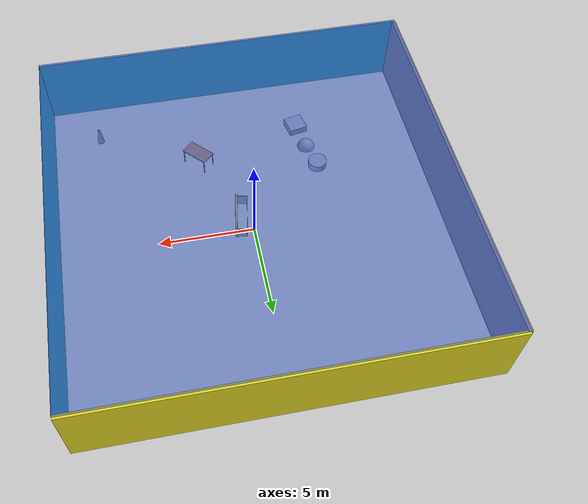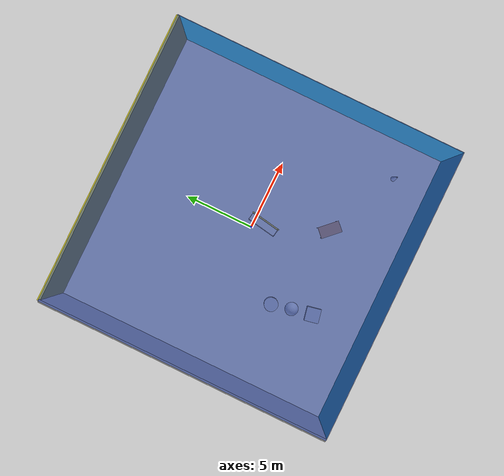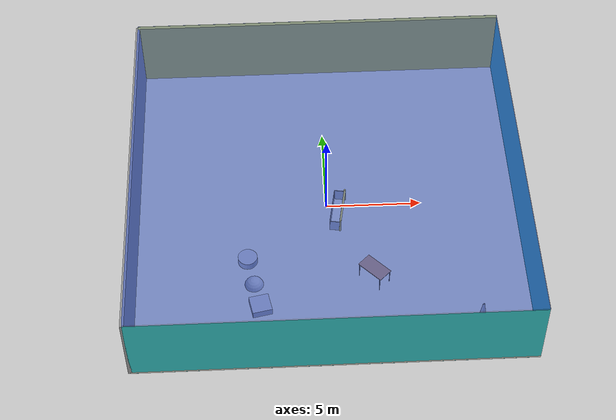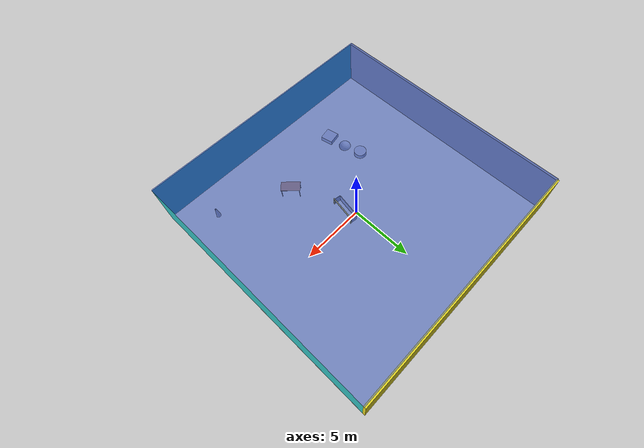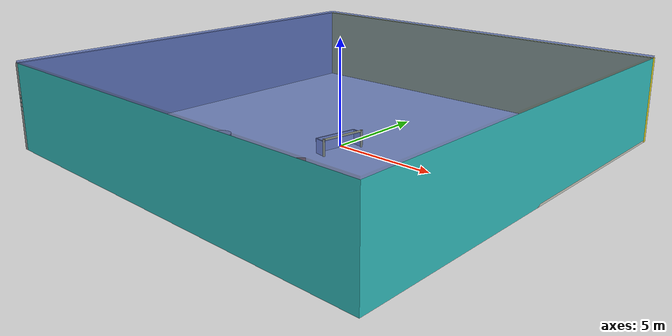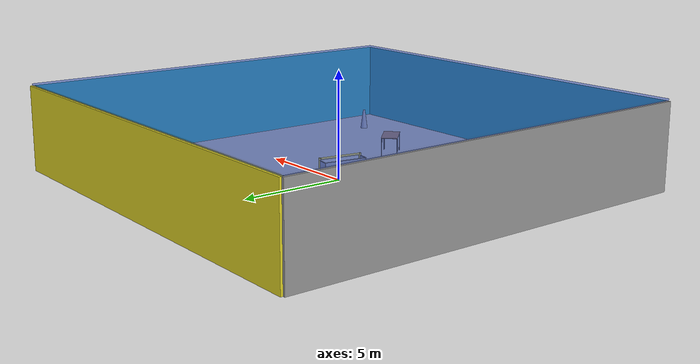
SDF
<sdf version="1.4">
 <world name="default">
  <physics type="ode">
   <max_step_size>0.001</max_step_size>
   <real_time_factor>1</real_time_factor>
   <real_time_update_rate>1000</real_time_update_rate>
   <gravity>0 0 -9.8</gravity>
  </physics>
  <scene><ambient>0.4 0.4 0.4 1</ambient><background>0.7 0.7 0.7 1</background><shadows>1</shadows></scene>
  <model name="Surrounding">
   <static>1</static>
   <link name="Ceiling">
    <collision name="Ceiling_Collision"><geometry><box><size>20 20 0.1</size></box></geometry></collision>
    <visual name="Ceiling_Visual">
     <geometry><box><size>20 20 0.1</size></box></geometry>
     <material>
      <script><uri>file://media/materials/scripts/gazebo.material</uri><name>Gazebo/BlueTransparent</name></script>
     </material>
    </visual>
    <pose>0 0 4.05 0 0 0</pose>
   </link>
   <link name="Wall_South">
    <collision name="Wall_South_Collision">
     <geometry><box><size>20 0 4</size></box></geometry>
     <pose>0 0 2 0 -0 0</pose>
    </collision>
    <visual name="Wall_South_Visual">
     <pose>0 0 2 0 -0 0</pose>
     <geometry><box><size>20 0 4</size></box></geometry>
     <material>
      <script>
       <uri>file://media/materials/scripts/gazebo.material</uri>
       <name>Gazebo/TurquoiseGlowOutline</name>
      </script>
     </material>
    </visual>
    <velocity_decay><linear>0</linear><angular>0</angular></velocity_decay>
    <pose>0 -10 0 0 -0 0</pose>
   </link>
   <link name="Wall_East">
    <collision name="Wall_21_Collision">
     <geometry><box><size>20 0 4</size></box></geometry>
     <pose>0 0 2 0 -0 0</pose>
    </collision>
    <visual name="Wall_21_Visual">
     <pose>0 0 2 0 -0 0</pose>
     <geometry><box><size>20 0 4</size></box></geometry>
     <material>
      <script>
       <uri>file://media/materials/scripts/gazebo.material</uri>
       <name>Gazebo/TurquoiseGlowOutline</name>
      </script>
     </material>
    </visual>
    <velocity_decay><linear>0</linear><angular>0</angular></velocity_decay>
    <pose>10 0 0 0 -0 1.5708</pose>
   </link>
   <link name="Wall_North">
    <collision name="Wall_22_Collision">
     <geometry><box><size>20 0.2 4</size></box></geometry>
     <pose>0 0 2 0 -0 0</pose>
    </collision>
    <visual name="Wall_22_Visual">
     <pose>0 0 2 0 -0 0</pose>
     <geometry><box><size>20 0.2 4</size></box></geometry>
     <material>
      <script><uri>file://media/materials/scripts/gazebo.material</uri><name>Gazebo/YellowGlow</name></script>
     </material>
    </visual>
    <velocity_decay><linear>0</linear><angular>0</angular></velocity_decay>
    <pose>0 10 0 0 -0 0</pose>
   </link>
   <link name="Wall_West">
    <collision name="Wall_23_Collision">
     <geometry><box><size>20 0.2 4</size></box></geometry>
     <pose>0 0 2 0 -0 0</pose>
    </collision>
    <visual name="Wall_23_Visual">
     <pose>0 0 2 0 -0 0</pose>
     <geometry><box><size>20 0.2 4</size></box></geometry>
     <material>
      <script><uri>file://media/materials/scripts/gazebo.material</uri><name>Gazebo/GreyGradientSky</name></script>
     </material>
    </visual>
    <velocity_decay><linear>0</linear><angular>0</angular></velocity_decay>
    <pose>-10 0 0 0 0 -1.5708</pose>
   </link>
   <link name="Ground_link">
    <collision name="collision">
     <pose>0 0 .05 0 -0 0</pose>
     <geometry><box><size>20 20 0.1</size></box></geometry>
    </collision>
    <visual name="visual">
     <pose>0 0 .05 0 -0 0</pose>
     <geometry><box><size>20 20 0.1</size></box></geometry>
     <material>
      <script><uri>file://media/materials/scripts/gazebo.material</uri><name>Gazebo/PaintedWall</name></script>
     </material>
    </visual>
   </link>
   <static>1</static>
  </model>
  <spherical_coordinates>
   <surface_model>EARTH_WGS84</surface_model>
   <latitude_deg>0</latitude_deg>
   <longitude_deg>0</longitude_deg>
   <elevation>0</elevation>
   <heading_deg>0</heading_deg>
  </spherical_coordinates>
  <light name="lightball_0" type="diffuse">
   <diffuse>0.8 0.8 0.8 1</diffuse>
   <specular>0.2 0.2 0.2 1</specular>
   <attenuation>
    <range>100</range>
    <constant>0.7</constant>
    <linear>0.01</linear>
    <quadratic>0.001</quadratic>
   </attenuation>
   <direction>-0.5 0.1 -0.9</direction>
   <pose>-5.55246322488 -4.40336359242 2.96159708956 0 0 0</pose>
  </light>
  <light name="lightball_1" type="diffuse">
   <diffuse>0.8 0.8 0.8 1</diffuse>
   <specular>0.2 0.2 0.2 1</specular>
   <attenuation>
    <range>100</range>
    <constant>0.7</constant>
    <linear>0.01</linear>
    <quadratic>0.001</quadratic>
   </attenuation>
   <direction>-0.5 0.1 -0.9</direction>
   <pose>-3.12673679003 0.881972428523 3.58365217306 0 0 0</pose>
  </light>
  <light name="lightball_2" type="diffuse">
   <diffuse>0.8 0.8 0.8 1</diffuse>
   <specular>0.2 0.2 0.2 1</specular>
   <attenuation>
    <range>100</range>
    <constant>0.7</constant>
    <linear>0.01</linear>
    <quadratic>0.001</quadratic>
   </attenuation>
   <direction>-0.5 0.1 -0.9</direction>
   <pose>0.797162894205 -1.13517086394 3.14105990188 0 0 0</pose>
  </light>
  <light name="lightball_3" type="diffuse">
   <diffuse>0.8 0.8 0.8 1</diffuse>
   <specular>0.2 0.2 0.2 1</specular>
   <attenuation>
    <range>100</range>
    <constant>0.7</constant>
    <linear>0.01</linear>
    <quadratic>0.001</quadratic>
   </attenuation>
   <direction>-0.5 0.1 -0.9</direction>
   <pose>1.78324670313 4.08301208148 2.06989258739 0 0 0</pose>
  </light>
  <light name="lightball_4" type="diffuse">
   <diffuse>0.8 0.8 0.8 1</diffuse>
   <specular>0.2 0.2 0.2 1</specular>
   <attenuation>
    <range>100</range>
    <constant>0.7</constant>
    <linear>0.01</linear>
    <quadratic>0.001</quadratic>
   </attenuation>
   <direction>-0.5 0.1 -0.9</direction>
   <pose>-7.16659000915 -8.87533821379 2.48708803666 0 0 0</pose>
  </light>
  <light name="lightball_5" type="diffuse">
   <diffuse>0.8 0.8 0.8 1</diffuse>
   <specular>0.2 0.2 0.2 1</specular>
   <attenuation>
    <range>100</range>
    <constant>0.7</constant>
    <linear>0.01</linear>
    <quadratic>0.001</quadratic>
   </attenuation>
   <direction>-0.5 0.1 -0.9</direction>
   <pose>7.35768231543 -0.220669443923 3.20929728705 0 0 0</pose>
  </light>
  <include>
   <uri>model://textured_shapes</uri>
   <pose>-3.92157363238 -5.0268590149 0 0 0 0.202953304756</pose>
  </include>
  <include><uri>model://table</uri><pose>2.19916130416 -4.92376115483 0 0 0 2.34437888902</pose></include>
  <include>
   <uri>model://robocup_3Dsim_goal</uri>
   <pose>0.814475632031 -0.700283759857 0 0 0 2.97535692361</pose>
  </include>
  <include>
   <uri>model://construction_cone</uri>
   <pose>7.42886698452 -7.48840160085 0 0 0 0.405011125664</pose>
  </include>
 </world>
</sdf>

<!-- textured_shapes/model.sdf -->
<sdf version="1.6">
  <model name="textured_shapes">
    <pose>0 0 0.5 0 0 0</pose>
    <link name="box">
      <pose>0 -1.5 0 0 0 0</pose>
      <collision name="collision">
        <geometry>
          <box>
            <size>1 1 1</size>
          </box>
        </geometry>
      </collision>
      <visual name="visual">
        <geometry>
          <box>
            <size>1 1 1</size>
          </box>
        </geometry>
        <material>
          <script>
            <uri>model://../model_source/models/textured_shapes/materials/scripts</uri>
            <uri>model://../model_source/models/textured_shapes/materials/textures</uri>
            <name>TexturedShape/Squares</name>
          </script>
        </material>
      </visual>
    </link>
    <link name="sphere">
      <collision name="collision">
        <geometry>
          <sphere>
            <radius>0.5</radius>
          </sphere>
        </geometry>
      </collision>
      <visual name="visual">
        <geometry>
          <sphere>
            <radius>0.5</radius>
          </sphere>
        </geometry>
        <material>
          <script>
            <uri>model://../model_source/models/textured_shapes/materials/scripts</uri>
            <uri>model://../model_source/models/textured_shapes/materials/textures</uri>
            <name>TexturedShape/Squares</name>
          </script>
        </material>
      </visual>
    </link>
    <link name="cylinder">
      <pose>0 1.5 0 0 0 0</pose>
      <collision name="collision">
        <geometry>
          <cylinder>
            <radius>0.5</radius>
            <length>1</length>
          </cylinder>
        </geometry>
      </collision>
      <visual name="visual">
        <geometry>
          <cylinder>
            <radius>0.5</radius>
            <length>1</length>
          </cylinder>
        </geometry>
        <material>
          <script>
            <uri>model://../model_source/models/textured_shapes/materials/scripts</uri>
            <uri>model://../model_source/models/textured_shapes/materials/textures</uri>
            <name>TexturedShape/Squares</name>
          </script>
        </material>
      </visual>
    </link>
  </model>
</sdf>

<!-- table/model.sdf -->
<sdf version="1.5">
  <model name="table">
    <static>true</static>
    <link name="link">
      <collision name="surface">
        <pose>0 0 1.0 0 0 0</pose>
        <geometry>
          <box>
            <size>1.5 0.8 0.03</size>
          </box>
        </geometry>
        <surface>
          <friction>
            <ode>
              <mu>0.6</mu>
              <mu2>0.6</mu2>
            </ode>
          </friction>
        </surface>
      </collision>
      <visual name="visual1">
        <pose>0 0 1.0 0 0 0</pose>
        <geometry>
          <box>
            <size>1.5 0.8 0.03</size>
          </box>
        </geometry>
        <material>
          <script>
            <uri>model://media/materials/scripts/gazebo.material</uri>
            <name>Gazebo/Wood</name>
          </script>
        </material>
      </visual>
      <collision name="front_left_leg">
        <pose>0.68 0.38 0.5 0 0 0</pose>
        <geometry>
          <cylinder>
            <radius>0.02</radius>
            <length>1.0</length>
          </cylinder>
        </geometry>
      </collision>
      <visual name="front_left_leg">
        <pose>0.68 0.38 0.5 0 0 0</pose>
        <geometry>
          <cylinder>
            <radius>0.02</radius>
            <length>1.0</length>
          </cylinder>
        </geometry>
        <material>
          <script>
            <uri>model://media/materials/scripts/gazebo.material</uri>
            <name>Gazebo/Grey</name>
          </script>
        </material>
      </visual>
      <collision name="front_right_leg">
        <pose>0.68 -0.38 0.5 0 0 0</pose>
        <geometry>
          <cylinder>
            <radius>0.02</radius>
            <length>1.0</length>
          </cylinder>
        </geometry>
      </collision>
      <visual name="front_right_leg">
        <pose>0.68 -0.38 0.5 0 0 0</pose>
        <geometry>
          <cylinder>
            <radius>0.02</radius>
            <length>1.0</length>
          </cylinder>
        </geometry>
        <material>
          <script>
            <uri>model://media/materials/scripts/gazebo.material</uri>
            <name>Gazebo/Grey</name>
          </script>
        </material>
      </visual>
      <collision name="back_right_leg">
        <pose>-0.68 -0.38 0.5 0 0 0</pose>
        <geometry>
          <cylinder>
            <radius>0.02</radius>
            <length>1.0</length>
          </cylinder>
        </geometry>
      </collision>
      <visual name="back_right_leg">
        <pose>-0.68 -0.38 0.5 0 0 0</pose>
        <geometry>
          <cylinder>
            <radius>0.02</radius>
            <length>1.0</length>
          </cylinder>
        </geometry>
        <material>
          <script>
            <uri>model://media/materials/scripts/gazebo.material</uri>
            <name>Gazebo/Grey</name>
          </script>
        </material>
      </visual>
      <collision name="back_left_leg">
        <pose>-0.68 0.38 0.5 0 0 0</pose>
        <geometry>
          <cylinder>
            <radius>0.02</radius>
            <length>1.0</length>
          </cylinder>
        </geometry>
      </collision>
      <visual name="back_left_leg">
        <pose>-0.68 0.38 0.5 0 0 0</pose>
        <geometry>
          <cylinder>
            <radius>0.02</radius>
            <length>1.0</length>
          </cylinder>
        </geometry>
        <material>
          <script>
            <uri>model://media/materials/scripts/gazebo.material</uri>
            <name>Gazebo/Grey</name>
          </script>
        </material>
      </visual>
    </link>
  </model>
</sdf>

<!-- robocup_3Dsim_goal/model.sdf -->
<sdf version="1.5">
  <model name="robocup_3d_goal">
    <static>true</static>
    <link name="left_post">
      <pose>0 1.05 0.45 0 0 0</pose>
      <collision name="collision">
        <geometry>
          <cylinder>
            <radius>0.05</radius>
            <length>0.9</length>
          </cylinder>
        </geometry>
      </collision>
      <visual name="visual">
        <geometry>
          <cylinder>
            <radius>0.05</radius>
            <length>0.9</length>
          </cylinder>
        </geometry>
        <material>
          <script>
            <uri>file://media/materials/scripts/gazebo.material</uri>
            <name>Gazebo/ZincYellow</name>
          </script>
        </material>
      </visual>
    </link>
    <link name="left_support_horiz_lower">
      <pose>0.30 1.05 0.01 0 0 0</pose>
      <collision name="collision">
        <geometry>
          <box>
            <size>0.50 0.02 0.02</size>
          </box>
        </geometry>
      </collision>
      <visual name="visual">
        <geometry>
          <box>
            <size>0.50 0.02 0.02</size>
          </box>
        </geometry>
        <material>
          <script>
            <uri>file://media/materials/scripts/gazebo.material</uri>
            <name>Gazebo/White</name>
          </script>
        </material>
      </visual>
    </link>
    <link name="left_support_horiz_upper">
      <pose>0.30 1.05 0.79 0 0 0</pose>
      <collision name="collision">
        <geometry>
          <box>
            <size>0.50 0.02 0.02</size>
          </box>
        </geometry>
      </collision>
      <visual name="visual">
        <geometry>
          <box>
            <size>0.50 0.02 0.02</size>
          </box>
        </geometry>
        <material>
          <script>
            <uri>file://media/materials/scripts/gazebo.material</uri>
            <name>Gazebo/White</name>
          </script>
        </material>
      </visual>
    </link>
    <link name="left_support_vertical">
      <pose>0.56 1.05 0.4 0 1.5708 0</pose>
      <collision name="collision">
        <geometry>
          <box>
            <size>0.80 0.02 0.02</size>
          </box>
        </geometry>
      </collision>
      <visual name="visual">
        <geometry>
          <box>
            <size>0.80 0.02 0.02</size>
          </box>
        </geometry>
        <material>
          <script>
            <uri>file://media/materials/scripts/gazebo.material</uri>
            <name>Gazebo/White</name>
          </script>
        </material>
      </visual>
    </link>
    <link name="right_support_horiz_lower">
      <pose>0.30 -1.05 0.01 0 0 0</pose>
      <collision name="collision">
        <geometry>
          <box>
            <size>0.50 0.02 0.02</size>
          </box>
        </geometry>
      </collision>
      <visual name="visual">
        <geometry>
          <box>
            <size>0.50 0.02 0.02</size>
          </box>
        </geometry>
        <material>
          <script>
            <uri>file://media/materials/scripts/gazebo.material</uri>
            <name>Gazebo/White</name>
          </script>
        </material>
      </visual>
    </link>
    <link name="right_support_horiz_upper">
      <pose>0.30 -1.05 0.79 0 0 0</pose>
      <collision name="collision">
        <geometry>
          <box>
            <size>0.50 0.02 0.02</size>
          </box>
        </geometry>
      </collision>
      <visual name="visual">
        <geometry>
          <box>
            <size>0.50 0.02 0.02</size>
          </box>
        </geometry>
        <material>
          <script>
            <uri>file://media/materials/scripts/gazebo.material</uri>
            <name>Gazebo/White</name>
          </script>
        </material>
      </visual>
    </link>
    <link name="right_support_vertical">
      <pose>0.56 -1.05 0.4 0 1.5708 0</pose>
      <collision name="collision">
        <geometry>
          <box>
            <size>0.80 0.02 0.02</size>
          </box>
        </geometry>
      </collision>
      <visual name="visual">
        <geometry>
          <box>
            <size>0.80 0.02 0.02</size>
          </box>
        </geometry>
        <material>
          <script>
            <uri>file://media/materials/scripts/gazebo.material</uri>
            <name>Gazebo/White</name>
          </script>
        </material>
      </visual>
    </link>
    <link name="center_support_horiz_lower">
      <pose>0.56 0 0.01 0 1.5708 0</pose>
      <collision name="collision">
        <geometry>
          <box>
            <size>0.02 2.08 0.02</size>
          </box>
        </geometry>
      </collision>
      <visual name="visual">
        <geometry>
          <box>
            <size>0.02 2.08 0.02</size>
          </box>
        </geometry>
        <material>
          <script>
            <uri>file://media/materials/scripts/gazebo.material</uri>
            <name>Gazebo/White</name>
          </script>
        </material>
      </visual>
    </link>
    <link name="center_support_horiz_upper">
      <pose>0.56 0 0.79 0 1.5708 0</pose>
      <collision name="collision">
        <geometry>
          <box>
            <size>0.02 2.08 0.02</size>
          </box>
        </geometry>
      </collision>
      <visual name="visual">
        <geometry>
          <box>
            <size>0.02 2.08 0.02</size>
          </box>
        </geometry>
        <material>
          <script>
            <uri>file://media/materials/scripts/gazebo.material</uri>
            <name>Gazebo/White</name>
          </script>
        </material>
      </visual>
    </link>
    <link name="right_post">
      <pose>0 -1.05 0.45 0 0 0</pose>
      <collision name="collision">
        <geometry>
          <cylinder>
            <radius>0.05</radius>
            <length>0.9</length>
          </cylinder>
        </geometry>
      </collision>
      <visual name="visual">
        <geometry>
          <cylinder>
            <radius>0.05</radius>
            <length>0.9</length>
          </cylinder>
        </geometry>
        <material>
          <script>
            <uri>file://media/materials/scripts/gazebo.material</uri>
            <name>Gazebo/ZincYellow</name>
          </script>
        </material>
      </visual>
    </link>
    <link name="crossbar">
      <pose>0 0 0.85 1.57 1.57 0</pose>
      <collision name="collision">
        <geometry>
          <cylinder>
            <radius>0.05</radius>
            <length>2.0</length>
          </cylinder>
        </geometry>
      </collision>
      <visual name="visual">
        <geometry>
          <cylinder>
            <radius>0.05</radius>
            <length>2.0</length>
          </cylinder>
        </geometry>
        <material>
          <script>
            <uri>file://media/materials/scripts/gazebo.material</uri>
            <name>Gazebo/ZincYellow</name>
          </script>
        </material>
      </visual>
    </link>
    <link name="center_net">
      <pose>0.56 0 0.40 0 0 0</pose>
      <collision name="collision">
        <geometry>
          <box>
            <size>0.01 2.1 0.80</size>
          </box>
        </geometry>
      </collision>
      <visual name="visual">
        <geometry>
          <box>
            <size>0.01 2.1 0.80</size>
          </box>
        </geometry>
        <material>
          <script>
            <uri>model://../model_source/models/robocup09_spl_field/materials/scripts/</uri>
            <uri>model://../model_source/models/robocup09_spl_field/materials/textures/</uri>
            <name>RoboCup/Net</name>
          </script>
        </material>
      </visual>
    </link>
    <link name="left_net">
      <pose>0.30 1.05 0.40 0 0 0</pose>
      <collision name="collision">
        <geometry>
          <box>
            <size>0.50 0.01 0.76</size>
          </box>
        </geometry>
      </collision>
      <visual name="visual">
        <geometry>
          <box>
            <size>0.50 0.01 0.76</size>
          </box>
        </geometry>
        <material>
          <script>
            <uri>model://../model_source/models/robocup09_spl_field/materials/scripts/</uri>
            <uri>model://../model_source/models/robocup09_spl_field/materials/textures/</uri>
            <name>RoboCup/Net</name>
          </script>
        </material>
      </visual>
    </link>
    <link name="right_net">
      <pose>0.30 -1.05 0.40 0 0 0</pose>
      <collision name="collision">
        <geometry>
          <box>
            <size>0.50 0.01 0.76</size>
          </box>
        </geometry>
      </collision>
      <visual name="visual">
        <geometry>
          <box>
            <size>0.50 0.01 0.76</size>
          </box>
        </geometry>
        <material>
          <script>
            <uri>model://../model_source/models/robocup09_spl_field/materials/scripts/</uri>
            <uri>model://../model_source/models/robocup09_spl_field/materials/textures/</uri>
            <name>RoboCup/Net</name>
          </script>
        </material>
      </visual>
    </link>
  </model>
</sdf>

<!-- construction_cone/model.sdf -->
<sdf version="1.5">
  <model name="Construction Cone">
    <link name="link">
      <collision name="collision">
        <geometry>
          <mesh>
            <scale>10 10 10</scale>
            <uri>file://isr-testbed/construction_cone/meshes/construction_cone.dae</uri>
          </mesh>
        </geometry>
      </collision>
      <visual name="visual">
        <geometry>
          <mesh>
            <scale>10 10 10</scale>
            <uri>file://isr-testbed/construction_cone/meshes/construction_cone.dae</uri>
          </mesh>
        </geometry>
      </visual>
    </link>
  </model>
</sdf>
